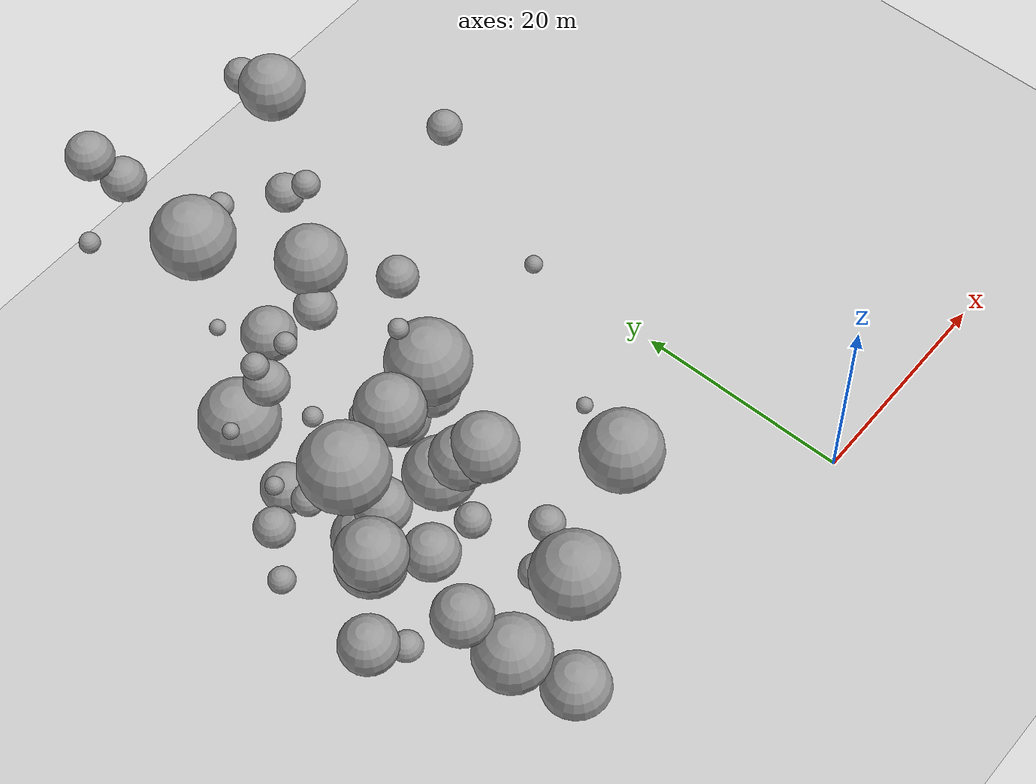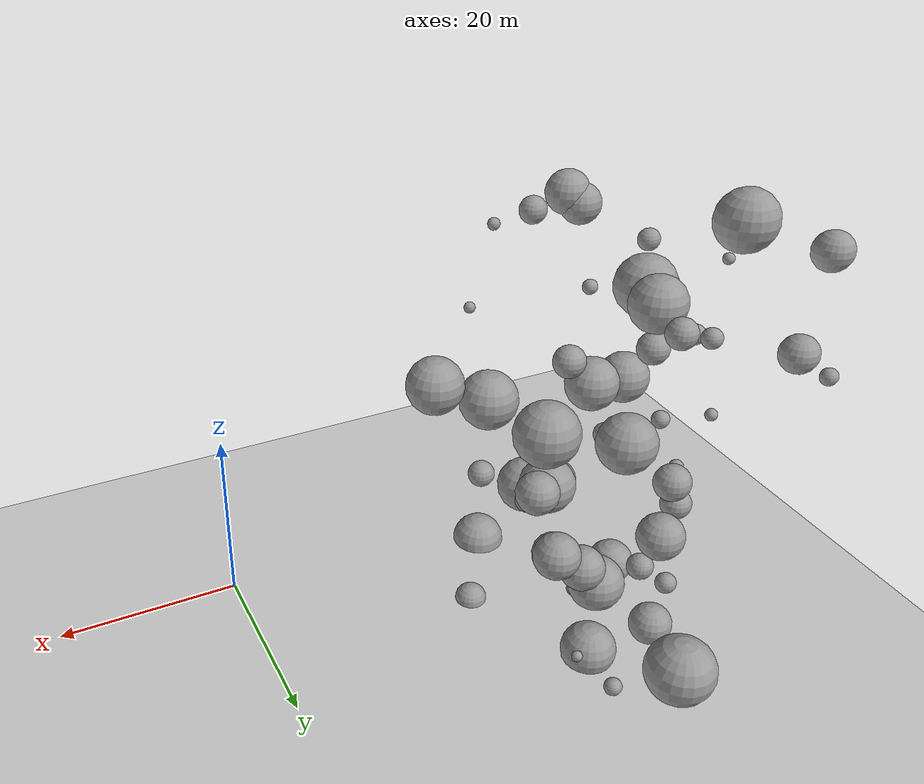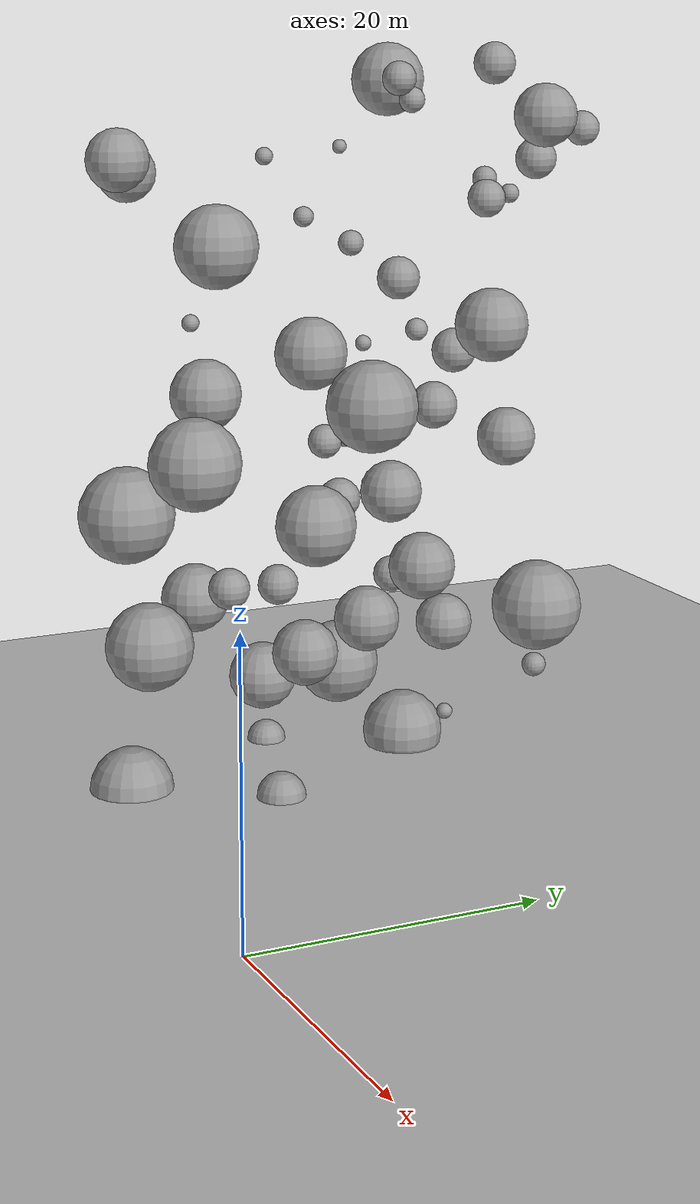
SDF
<sdf version="1.7">
 <world name="default">
  <model name="ground_plane">
   <static>1</static>
   <link name="link">
    <collision name="collision">
     <geometry><plane><normal>0 0 1</normal><size>100 100</size></plane></geometry>
     <surface>
      <contact><collide_bitmask>65535</collide_bitmask></contact>
      <friction><ode><mu>100</mu><mu2>50</mu2></ode></friction>
     </surface>
    </collision>
    <visual name="visual">
     <cast_shadows>0</cast_shadows>
     <geometry><plane><normal>0 0 1</normal><size>100 100</size></plane></geometry>
     <material>
      <script><uri>file://media/materials/scripts/gazebo.material</uri><name>Gazebo/Grey</name></script>
     </material>
    </visual>
   </link>
  </model>
  <model name="sphere_18">
   <static>1</static>
   <pose>-40 14 26 0 0 0</pose>
   <link name="link">
    <inertial>
     <mass>8225.452633346169</mass>
     <inertia>
      <ixx>23947.890376761054</ixx>
      <iyy>23947.890376761054</iyy>
      <izz>23947.890376761054</izz>
      <ixy>0</ixy>
      <ixz>0</ixz>
      <iyz>0</iyz>
     </inertia>
    </inertial>
    <collision name="collision">
     <geometry><sphere><radius>2.6978868553422295</radius></sphere></geometry>
    </collision>
    <visual name="visual">
     <geometry><sphere><radius>2.6978868553422295</radius></sphere></geometry>
     <material>
      <script><uri>file://media/materials/scripts/gazebo.material</uri><name>Gazebo/Grey</name></script>
     </material>
    </visual>
   </link>
  </model>
  <model name="sphere_20">
   <static>1</static>
   <pose>-39 18 4 0 0 0</pose>
   <link name="link">
    <inertial>
     <mass>6884.592858552692</mass>
     <inertia>
      <ixx>17801.831602850525</ixx>
      <iyy>17801.831602850525</iyy>
      <izz>17801.831602850525</izz>
      <ixy>0</ixy>
      <ixz>0</ixz>
      <iyz>0</iyz>
     </inertia>
    </inertial>
    <collision name="collision">
     <geometry><sphere><radius>2.5425132072564818</radius></sphere></geometry>
    </collision>
    <visual name="visual">
     <geometry><sphere><radius>2.5425132072564818</radius></sphere></geometry>
     <material>
      <script><uri>file://media/materials/scripts/gazebo.material</uri><name>Gazebo/Grey</name></script>
     </material>
    </visual>
   </link>
  </model>
  <model name="sphere_35">
   <static>1</static>
   <pose>-39 25 22 0 0 0</pose>
   <link name="link">
    <inertial>
     <mass>152.28715886802905</mass>
     <inertia>
      <ixx>31.029377219115755</ixx>
      <iyy>31.029377219115755</iyy>
      <izz>31.029377219115755</izz>
      <ixy>0</ixy>
      <ixz>0</ixz>
      <iyz>0</iyz>
     </inertia>
    </inertial>
    <collision name="collision">
     <geometry><sphere><radius>0.7137151107000433</radius></sphere></geometry>
    </collision>
    <visual name="visual">
     <geometry><sphere><radius>0.7137151107000433</radius></sphere></geometry>
     <material>
      <script><uri>file://media/materials/scripts/gazebo.material</uri><name>Gazebo/Grey</name></script>
     </material>
    </visual>
   </link>
  </model>
  <model name="sphere_40">
   <static>1</static>
   <pose>-30 34 23 0 0 0</pose>
   <link name="link">
    <inertial>
     <mass>4261.430314649051</mass>
     <inertia>
      <ixx>8003.130589517396</ixx>
      <iyy>8003.130589517396</iyy>
      <izz>8003.130589517396</izz>
      <ixy>0</ixy>
      <ixz>0</ixz>
      <iyz>0</iyz>
     </inertia>
    </inertial>
    <collision name="collision">
     <geometry><sphere><radius>2.1668171313871447</radius></sphere></geometry>
    </collision>
    <visual name="visual">
     <geometry><sphere><radius>2.1668171313871447</radius></sphere></geometry>
     <material>
      <script><uri>file://media/materials/scripts/gazebo.material</uri><name>Gazebo/Grey</name></script>
     </material>
    </visual>
   </link>
  </model>
  <model name="sphere_47">
   <static>1</static>
   <pose>-31 18 40 0 0 0</pose>
   <link name="link">
    <inertial>
     <mass>155.30379787115365</mass>
     <inertia>
      <ixx>32.06055569912542</ixx>
      <iyy>32.06055569912542</iyy>
      <izz>32.06055569912542</izz>
      <ixy>0</ixy>
      <ixz>0</ixz>
      <iyz>0</iyz>
     </inertia>
    </inertial>
    <collision name="collision">
     <geometry><sphere><radius>0.7183969651521795</radius></sphere></geometry>
    </collision>
    <visual name="visual">
     <geometry><sphere><radius>0.7183969651521795</radius></sphere></geometry>
     <material>
      <script><uri>file://media/materials/scripts/gazebo.material</uri><name>Gazebo/Grey</name></script>
     </material>
    </visual>
   </link>
  </model>
  <model name="sphere_70">
   <static>1</static>
   <pose>-32 22 26 0 0 0</pose>
   <link name="link">
    <inertial>
     <mass>585.6069190894783</mass>
     <inertia>
      <ixx>292.87204345417746</ixx>
      <iyy>292.87204345417746</iyy>
      <izz>292.87204345417746</izz>
      <ixy>0</ixy>
      <ixz>0</ixz>
      <iyz>0</iyz>
     </inertia>
    </inertial>
    <collision name="collision">
     <geometry><sphere><radius>1.1181649206936348</radius></sphere></geometry>
    </collision>
    <visual name="visual">
     <geometry><sphere><radius>1.1181649206936348</radius></sphere></geometry>
     <material>
      <script><uri>file://media/materials/scripts/gazebo.material</uri><name>Gazebo/Grey</name></script>
     </material>
    </visual>
   </link>
  </model>
  <model name="sphere_76">
   <static>1</static>
   <pose>-34 21 23 0 0 0</pose>
   <link name="link">
    <inertial>
     <mass>803.7425091275265</mass>
     <inertia>
      <ixx>496.4351023191032</ixx>
      <iyy>496.4351023191032</iyy>
      <izz>496.4351023191032</izz>
      <ixy>0</ixy>
      <ixz>0</ixz>
      <iyz>0</iyz>
     </inertia>
    </inertial>
    <collision name="collision">
     <geometry><sphere><radius>1.242632695461721</radius></sphere></geometry>
    </collision>
    <visual name="visual">
     <geometry><sphere><radius>1.242632695461721</radius></sphere></geometry>
     <material>
      <script><uri>file://media/materials/scripts/gazebo.material</uri><name>Gazebo/Grey</name></script>
     </material>
    </visual>
   </link>
  </model>
  <model name="sphere_82">
   <static>1</static>
   <pose>-26 10 15 0 0 0</pose>
   <link name="link">
    <inertial>
     <mass>1269.9780228273705</mass>
     <inertia>
      <ixx>1064.129772752916</ixx>
      <iyy>1064.129772752916</iyy>
      <izz>1064.129772752916</izz>
      <ixy>0</ixy>
      <ixz>0</ixz>
      <iyz>0</iyz>
     </inertia>
    </inertial>
    <collision name="collision">
     <geometry><sphere><radius>1.4473354473047935</radius></sphere></geometry>
    </collision>
    <visual name="visual">
     <geometry><sphere><radius>1.4473354473047935</radius></sphere></geometry>
     <material>
      <script><uri>file://media/materials/scripts/gazebo.material</uri><name>Gazebo/Grey</name></script>
     </material>
    </visual>
   </link>
  </model>
  <model name="sphere_85">
   <static>1</static>
   <pose>-30 26 48 0 0 0</pose>
   <link name="link">
    <inertial>
     <mass>333.2703430083018</mass>
     <inertia>
      <ixx>114.46218514865483</ixx>
      <iyy>114.46218514865483</iyy>
      <izz>114.46218514865483</izz>
      <ixy>0</ixy>
      <ixz>0</ixz>
      <iyz>0</iyz>
     </inertia>
    </inertial>
    <collision name="collision">
     <geometry><sphere><radius>0.926622169229243</radius></sphere></geometry>
    </collision>
    <visual name="visual">
     <geometry><sphere><radius>0.926622169229243</radius></sphere></geometry>
     <material>
      <script><uri>file://media/materials/scripts/gazebo.material</uri><name>Gazebo/Grey</name></script>
     </material>
    </visual>
   </link>
  </model>
  <model name="sphere_92">
   <static>1</static>
   <pose>-32 33 42 0 0 0</pose>
   <link name="link">
    <inertial>
     <mass>301.44834404158814</mass>
     <inertia>
      <ixx>96.8327849669831</ixx>
      <iyy>96.8327849669831</iyy>
      <izz>96.8327849669831</izz>
      <ixy>0</ixy>
      <ixz>0</ixz>
      <iyz>0</iyz>
     </inertia>
    </inertial>
    <collision name="collision">
     <geometry><sphere><radius>0.8961377333540194</radius></sphere></geometry>
    </collision>
    <visual name="visual">
     <geometry><sphere><radius>0.8961377333540194</radius></sphere></geometry>
     <material>
      <script><uri>file://media/materials/scripts/gazebo.material</uri><name>Gazebo/Grey</name></script>
     </material>
    </visual>
   </link>
  </model>
  <model name="sphere_117">
   <static>1</static>
   <pose>-31 23 10 0 0 0</pose>
   <link name="link">
    <inertial>
     <mass>5925.432330833343</mass>
     <inertia>
      <ixx>13863.333039640904</ixx>
      <iyy>13863.333039640904</iyy>
      <izz>13863.333039640904</izz>
      <ixy>0</ixy>
      <ixz>0</ixz>
      <iyz>0</iyz>
     </inertia>
    </inertial>
    <collision name="collision">
     <geometry><sphere><radius>2.418487300037291</radius></sphere></geometry>
    </collision>
    <visual name="visual">
     <geometry><sphere><radius>2.418487300037291</radius></sphere></geometry>
     <material>
      <script><uri>file://media/materials/scripts/gazebo.material</uri><name>Gazebo/Grey</name></script>
     </material>
    </visual>
   </link>
  </model>
  <model name="sphere_118">
   <static>1</static>
   <pose>-25 22 21 0 0 0</pose>
   <link name="link">
    <inertial>
     <mass>4375.741081865691</mass>
     <inertia>
      <ixx>8364.120462237703</ixx>
      <iyy>8364.120462237703</iyy>
      <izz>8364.120462237703</izz>
      <ixy>0</ixy>
      <ixz>0</ixz>
      <iyz>0</iyz>
     </inertia>
    </inertial>
    <collision name="collision">
     <geometry><sphere><radius>2.1860210301755045</radius></sphere></geometry>
    </collision>
    <visual name="visual">
     <geometry><sphere><radius>2.1860210301755045</radius></sphere></geometry>
     <material>
      <script><uri>file://media/materials/scripts/gazebo.material</uri><name>Gazebo/Grey</name></script>
     </material>
    </visual>
   </link>
  </model>
  <model name="sphere_122">
   <static>1</static>
   <pose>-30 4 20 0 0 0</pose>
   <link name="link">
    <inertial>
     <mass>16475.69941824915</mass>
     <inertia>
      <ixx>76220.89054452357</ixx>
      <iyy>76220.89054452357</iyy>
      <izz>76220.89054452357</izz>
      <ixy>0</ixy>
      <ixz>0</ixz>
      <iyz>0</iyz>
     </inertia>
    </inertial>
    <collision name="collision">
     <geometry><sphere><radius>3.4008312572376354</radius></sphere></geometry>
    </collision>
    <visual name="visual">
     <geometry><sphere><radius>3.4008312572376354</radius></sphere></geometry>
     <material>
      <script><uri>file://media/materials/scripts/gazebo.material</uri><name>Gazebo/Grey</name></script>
     </material>
    </visual>
   </link>
  </model>
  <model name="sphere_145">
   <static>1</static>
   <pose>-36 6 44 0 0 0</pose>
   <link name="link">
    <inertial>
     <mass>4893.143862018364</mass>
     <inertia>
      <ixx>10076.604798664828</ixx>
      <iyy>10076.604798664828</iyy>
      <izz>10076.604798664828</izz>
      <ixy>0</ixy>
      <ixz>0</ixz>
      <iyz>0</iyz>
     </inertia>
    </inertial>
    <collision name="collision">
     <geometry><sphere><radius>2.2689928381188174</radius></sphere></geometry>
    </collision>
    <visual name="visual">
     <geometry><sphere><radius>2.2689928381188174</radius></sphere></geometry>
     <material>
      <script><uri>file://media/materials/scripts/gazebo.material</uri><name>Gazebo/Grey</name></script>
     </material>
    </visual>
   </link>
  </model>
  <model name="sphere_147">
   <static>1</static>
   <pose>-26 21 27 0 0 0</pose>
   <link name="link">
    <inertial>
     <mass>15024.055192962845</mass>
     <inertia>
      <ixx>65360.12424226399</ixx>
      <iyy>65360.12424226399</iyy>
      <izz>65360.12424226399</izz>
      <ixy>0</ixy>
      <ixz>0</ixz>
      <iyz>0</iyz>
     </inertia>
    </inertial>
    <collision name="collision">
     <geometry><sphere><radius>3.2978648489624667</radius></sphere></geometry>
    </collision>
    <visual name="visual">
     <geometry><sphere><radius>3.2978648489624667</radius></sphere></geometry>
     <material>
      <script><uri>file://media/materials/scripts/gazebo.material</uri><name>Gazebo/Grey</name></script>
     </material>
    </visual>
   </link>
  </model>
  <model name="sphere_168">
   <static>1</static>
   <pose>-29 15 14 0 0 0</pose>
   <link name="link">
    <inertial>
     <mass>1268.7417553796713</mass>
     <inertia>
      <ixx>1062.4038608970968</ixx>
      <iyy>1062.4038608970968</iyy>
      <izz>1062.4038608970968</izz>
      <ixy>0</ixy>
      <ixz>0</ixz>
      <iyz>0</iyz>
     </inertia>
    </inertial>
    <collision name="collision">
     <geometry><sphere><radius>1.4468656558121165</radius></sphere></geometry>
    </collision>
    <visual name="visual">
     <geometry><sphere><radius>1.4468656558121165</radius></sphere></geometry>
     <material>
      <script><uri>file://media/materials/scripts/gazebo.material</uri><name>Gazebo/Grey</name></script>
     </material>
    </visual>
   </link>
  </model>
  <model name="sphere_171">
   <static>1</static>
   <pose>-34 31 8 0 0 0</pose>
   <link name="link">
    <inertial>
     <mass>4141.89619348023</mass>
     <inertia>
      <ixx>7632.490435268319</ixx>
      <iyy>7632.490435268319</iyy>
      <izz>7632.490435268319</izz>
      <ixy>0</ixy>
      <ixz>0</ixz>
      <iyz>0</iyz>
     </inertia>
    </inertial>
    <collision name="collision">
     <geometry><sphere><radius>2.1463647814658766</radius></sphere></geometry>
    </collision>
    <visual name="visual">
     <geometry><sphere><radius>2.1463647814658766</radius></sphere></geometry>
     <material>
      <script><uri>file://media/materials/scripts/gazebo.material</uri><name>Gazebo/Grey</name></script>
     </material>
    </visual>
   </link>
  </model>
  <model name="sphere_172">
   <static>1</static>
   <pose>-35 11 12 0 0 0</pose>
   <link name="link">
    <inertial>
     <mass>6558.706225554831</mass>
     <inertia>
      <ixx>16419.67472655536</ixx>
      <iyy>16419.67472655536</iyy>
      <izz>16419.67472655536</izz>
      <ixy>0</ixy>
      <ixz>0</ixz>
      <iyz>0</iyz>
     </inertia>
    </inertial>
    <collision name="collision">
     <geometry><sphere><radius>2.501745860039657</radius></sphere></geometry>
    </collision>
    <visual name="visual">
     <geometry><sphere><radius>2.501745860039657</radius></sphere></geometry>
     <material>
      <script><uri>file://media/materials/scripts/gazebo.material</uri><name>Gazebo/Grey</name></script>
     </material>
    </visual>
   </link>
  </model>
  <model name="sphere_187">
   <static>1</static>
   <pose>-30 4 0 0 0 0</pose>
   <link name="link">
    <inertial>
     <mass>11270.670871629663</mass>
     <inertia>
      <ixx>40480.934643574605</ixx>
      <iyy>40480.934643574605</iyy>
      <izz>40480.934643574605</izz>
      <ixy>0</ixy>
      <ixz>0</ixz>
      <iyz>0</iyz>
     </inertia>
    </inertial>
    <collision name="collision">
     <geometry><sphere><radius>2.99654211653514</radius></sphere></geometry>
    </collision>
    <visual name="visual">
     <geometry><sphere><radius>2.99654211653514</radius></sphere></geometry>
     <material>
      <script><uri>file://media/materials/scripts/gazebo.material</uri><name>Gazebo/Grey</name></script>
     </material>
    </visual>
   </link>
  </model>
  <model name="sphere_188">
   <static>1</static>
   <pose>-36 17 0 0 0 0</pose>
   <link name="link">
    <inertial>
     <mass>1210.3469071014342</mass>
     <inertia>
      <ixx>982.1640334451611</ixx>
      <iyy>982.1640334451611</iyy>
      <izz>982.1640334451611</izz>
      <ixy>0</ixy>
      <ixz>0</ixz>
      <iyz>0</iyz>
     </inertia>
    </inertial>
    <collision name="collision">
     <geometry><sphere><radius>1.4243184013245076</radius></sphere></geometry>
    </collision>
    <visual name="visual">
     <geometry><sphere><radius>1.4243184013245076</radius></sphere></geometry>
     <material>
      <script><uri>file://media/materials/scripts/gazebo.material</uri><name>Gazebo/Grey</name></script>
     </material>
    </visual>
   </link>
  </model>
  <model name="sphere_189">
   <static>1</static>
   <pose>-35 39 43 0 0 0</pose>
   <link name="link">
    <inertial>
     <mass>1566.4705016477649</mass>
     <inertia>
      <ixx>1509.6326736413425</ixx>
      <iyy>1509.6326736413425</iyy>
      <izz>1509.6326736413425</izz>
      <ixy>0</ixy>
      <ixz>0</ixz>
      <iyz>0</iyz>
     </inertia>
    </inertial>
    <collision name="collision">
     <geometry><sphere><radius>1.5521887708428272</radius></sphere></geometry>
    </collision>
    <visual name="visual">
     <geometry><sphere><radius>1.5521887708428272</radius></sphere></geometry>
     <material>
      <script><uri>file://media/materials/scripts/gazebo.material</uri><name>Gazebo/Grey</name></script>
     </material>
    </visual>
   </link>
  </model>
  <model name="sphere_198">
   <static>1</static>
   <pose>-40 26 7 0 0 0</pose>
   <link name="link">
    <inertial>
     <mass>617.8506450032503</mass>
     <inertia>
      <ixx>320.23841366670877</ixx>
      <iyy>320.23841366670877</iyy>
      <izz>320.23841366670877</izz>
      <ixy>0</ixy>
      <ixz>0</ixz>
      <iyz>0</iyz>
     </inertia>
    </inertial>
    <collision name="collision">
     <geometry><sphere><radius>1.138321569153365</radius></sphere></geometry>
    </collision>
    <visual name="visual">
     <geometry><sphere><radius>1.138321569153365</radius></sphere></geometry>
     <material>
      <script><uri>file://media/materials/scripts/gazebo.material</uri><name>Gazebo/Grey</name></script>
     </material>
    </visual>
   </link>
  </model>
  <model name="sphere_205">
   <static>1</static>
   <pose>-28 31 41 0 0 0</pose>
   <link name="link">
    <inertial>
     <mass>1055.2073721679562</mass>
     <inertia>
      <ixx>781.4429540592438</ixx>
      <iyy>781.4429540592438</iyy>
      <izz>781.4429540592438</izz>
      <ixy>0</ixy>
      <ixz>0</ixz>
      <iyz>0</iyz>
     </inertia>
    </inertial>
    <collision name="collision">
     <geometry><sphere><radius>1.3606603697169493</radius></sphere></geometry>
    </collision>
    <visual name="visual">
     <geometry><sphere><radius>1.3606603697169493</radius></sphere></geometry>
     <material>
      <script><uri>file://media/materials/scripts/gazebo.material</uri><name>Gazebo/Grey</name></script>
     </material>
    </visual>
   </link>
  </model>
  <model name="sphere_218">
   <static>1</static>
   <pose>-24 12 45 0 0 0</pose>
   <link name="link">
    <inertial>
     <mass>86.91421882349934</mass>
     <inertia>
      <ixx>12.184815858120837</ixx>
      <iyy>12.184815858120837</iyy>
      <izz>12.184815858120837</izz>
      <ixy>0</ixy>
      <ixz>0</ixz>
      <iyz>0</iyz>
     </inertia>
    </inertial>
    <collision name="collision">
     <geometry><sphere><radius>0.5920168583708135</radius></sphere></geometry>
    </collision>
    <visual name="visual">
     <geometry><sphere><radius>0.5920168583708135</radius></sphere></geometry>
     <material>
      <script><uri>file://media/materials/scripts/gazebo.material</uri><name>Gazebo/Grey</name></script>
     </material>
    </visual>
   </link>
  </model>
  <model name="sphere_227">
   <static>1</static>
   <pose>-34 7 9 0 0 0</pose>
   <link name="link">
    <inertial>
     <mass>14205.140694231628</mass>
     <inertia>
      <ixx>59531.04200909687</ixx>
      <iyy>59531.04200909687</iyy>
      <izz>59531.04200909687</izz>
      <ixy>0</ixy>
      <ixz>0</ixz>
      <iyz>0</iyz>
     </inertia>
    </inertial>
    <collision name="collision">
     <geometry><sphere><radius>3.2368231887479624</radius></sphere></geometry>
    </collision>
    <visual name="visual">
     <geometry><sphere><radius>3.2368231887479624</radius></sphere></geometry>
     <material>
      <script><uri>file://media/materials/scripts/gazebo.material</uri><name>Gazebo/Grey</name></script>
     </material>
    </visual>
   </link>
  </model>
  <model name="sphere_241">
   <static>1</static>
   <pose>-31 18 8 0 0 0</pose>
   <link name="link">
    <inertial>
     <mass>5926.34005336005</mass>
     <inertia>
      <ixx>13866.872781994907</ixx>
      <iyy>13866.872781994907</iyy>
      <izz>13866.872781994907</izz>
      <ixy>0</ixy>
      <ixz>0</ixz>
      <iyz>0</iyz>
     </inertia>
    </inertial>
    <collision name="collision">
     <geometry><sphere><radius>2.418610790509601</radius></sphere></geometry>
    </collision>
    <visual name="visual">
     <geometry><sphere><radius>2.418610790509601</radius></sphere></geometry>
     <material>
      <script><uri>file://media/materials/scripts/gazebo.material</uri><name>Gazebo/Grey</name></script>
     </material>
    </visual>
   </link>
  </model>
  <model name="sphere_258">
   <static>1</static>
   <pose>-29 18 18 0 0 0</pose>
   <link name="link">
    <inertial>
     <mass>10596.093286969723</mass>
     <inertia>
      <ixx>36523.90521127547</ixx>
      <iyy>36523.90521127547</iyy>
      <izz>36523.90521127547</izz>
      <ixy>0</ixy>
      <ixz>0</ixz>
      <iyz>0</iyz>
     </inertia>
    </inertial>
    <collision name="collision">
     <geometry><sphere><radius>2.935524580490048</radius></sphere></geometry>
    </collision>
    <visual name="visual">
     <geometry><sphere><radius>2.935524580490048</radius></sphere></geometry>
     <material>
      <script><uri>file://media/materials/scripts/gazebo.material</uri><name>Gazebo/Grey</name></script>
     </material>
    </visual>
   </link>
  </model>
  <model name="sphere_264">
   <static>1</static>
   <pose>-34 30 25 0 0 0</pose>
   <link name="link">
    <inertial>
     <mass>2305.6268028142517</mass>
     <inertia>
      <ixx>2875.0756206414685</ixx>
      <iyy>2875.0756206414685</iyy>
      <izz>2875.0756206414685</izz>
      <ixy>0</ixy>
      <ixz>0</ixz>
      <iyz>0</iyz>
     </inertia>
    </inertial>
    <collision name="collision">
     <geometry><sphere><radius>1.7656317681970184</radius></sphere></geometry>
    </collision>
    <visual name="visual">
     <geometry><sphere><radius>1.7656317681970184</radius></sphere></geometry>
     <material>
      <script><uri>file://media/materials/scripts/gazebo.material</uri><name>Gazebo/Grey</name></script>
     </material>
    </visual>
   </link>
  </model>
  <model name="sphere_273">
   <static>1</static>
   <pose>-27 31 32 0 0 0</pose>
   <link name="link">
    <inertial>
     <mass>7955.48913921917</mass>
     <inertia>
      <ixx>22652.3048215234</ixx>
      <iyy>22652.3048215234</iyy>
      <izz>22652.3048215234</izz>
      <ixy>0</ixy>
      <ixz>0</ixz>
      <iyz>0</iyz>
     </inertia>
    </inertial>
    <collision name="collision">
     <geometry><sphere><radius>2.6680425982560187</radius></sphere></geometry>
    </collision>
    <visual name="visual">
     <geometry><sphere><radius>2.6680425982560187</radius></sphere></geometry>
     <material>
      <script><uri>file://media/materials/scripts/gazebo.material</uri><name>Gazebo/Grey</name></script>
     </material>
    </visual>
   </link>
  </model>
  <model name="sphere_281">
   <static>1</static>
   <pose>-38 28 49 0 0 0</pose>
   <link name="link">
    <inertial>
     <mass>8335.643635910068</mass>
     <inertia>
      <ixx>24484.96481289702</ixx>
      <iyy>24484.96481289702</iyy>
      <izz>24484.96481289702</izz>
      <ixy>0</ixy>
      <ixz>0</ixz>
      <iyz>0</iyz>
     </inertia>
    </inertial>
    <collision name="collision">
     <geometry><sphere><radius>2.7098807301990226</radius></sphere></geometry>
    </collision>
    <visual name="visual">
     <geometry><sphere><radius>2.7098807301990226</radius></sphere></geometry>
     <material>
      <script><uri>file://media/materials/scripts/gazebo.material</uri><name>Gazebo/Grey</name></script>
     </material>
    </visual>
   </link>
  </model>
  <model name="sphere_296">
   <static>1</static>
   <pose>-28 28 3 0 0 0</pose>
   <link name="link">
    <inertial>
     <mass>84.50873429161608</mass>
     <inertia>
      <ixx>11.62796137496912</ixx>
      <iyy>11.62796137496912</iyy>
      <izz>11.62796137496912</izz>
      <ixy>0</ixy>
      <ixz>0</ixz>
      <iyz>0</iyz>
     </inertia>
    </inertial>
    <collision name="collision">
     <geometry><sphere><radius>0.5865040237548754</radius></sphere></geometry>
    </collision>
    <visual name="visual">
     <geometry><sphere><radius>0.5865040237548754</radius></sphere></geometry>
     <material>
      <script><uri>file://media/materials/scripts/gazebo.material</uri><name>Gazebo/Grey</name></script>
     </material>
    </visual>
   </link>
  </model>
  <model name="sphere_318">
   <static>1</static>
   <pose>-40 25 17 0 0 0</pose>
   <link name="link">
    <inertial>
     <mass>1722.1460705050565</mass>
     <inertia>
      <ixx>1767.8723099528152</ixx>
      <iyy>1767.8723099528152</iyy>
      <izz>1767.8723099528152</izz>
      <ixy>0</ixy>
      <ixz>0</ixz>
      <iyz>0</iyz>
     </inertia>
    </inertial>
    <collision name="collision">
     <geometry><sphere><radius>1.601992426423871</radius></sphere></geometry>
    </collision>
    <visual name="visual">
     <geometry><sphere><radius>1.601992426423871</radius></sphere></geometry>
     <material>
      <script><uri>file://media/materials/scripts/gazebo.material</uri><name>Gazebo/Grey</name></script>
     </material>
    </visual>
   </link>
  </model>
  <model name="sphere_319">
   <static>1</static>
   <pose>-26 23 36 0 0 0</pose>
   <link name="link">
    <inertial>
     <mass>1426.1617273699032</mass>
     <inertia>
      <ixx>1291.067298352506</ixx>
      <iyy>1291.067298352506</iyy>
      <izz>1291.067298352506</izz>
      <ixy>0</ixy>
      <ixz>0</ixz>
      <iyz>0</iyz>
     </inertia>
    </inertial>
    <collision name="collision">
     <geometry><sphere><radius>1.5043886772837807</radius></sphere></geometry>
    </collision>
    <visual name="visual">
     <geometry><sphere><radius>1.5043886772837807</radius></sphere></geometry>
     <material>
      <script><uri>file://media/materials/scripts/gazebo.material</uri><name>Gazebo/Grey</name></script>
     </material>
    </visual>
   </link>
  </model>
  <model name="sphere_320">
   <static>1</static>
   <pose>-38 37 50 0 0 0</pose>
   <link name="link">
    <inertial>
     <mass>1699.1437369428543</mass>
     <inertia>
      <ixx>1728.692642104113</ixx>
      <iyy>1728.692642104113</iyy>
      <izz>1728.692642104113</izz>
      <ixy>0</ixy>
      <ixz>0</ixz>
      <iyz>0</iyz>
     </inertia>
    </inertial>
    <collision name="collision"><geometry><sphere><radius>1.5948279438717</radius></sphere></geometry></collision>
    <visual name="visual">
     <geometry><sphere><radius>1.5948279438717</radius></sphere></geometry>
     <material>
      <script><uri>file://media/materials/scripts/gazebo.material</uri><name>Gazebo/Grey</name></script>
     </material>
    </visual>
   </link>
  </model>
  <model name="sphere_361">
   <static>1</static>
   <pose>-25 7 34 0 0 0</pose>
   <link name="link">
    <inertial>
     <mass>85.9804967767925</mass>
     <inertia>
      <ixx>11.967428328024663</ixx>
      <iyy>11.967428328024663</iyy>
      <izz>11.967428328024663</izz>
      <ixy>0</ixy>
      <ixz>0</ixz>
      <iyz>0</iyz>
     </inertia>
    </inertial>
    <collision name="collision">
     <geometry><sphere><radius>0.5898892026674357</radius></sphere></geometry>
    </collision>
    <visual name="visual">
     <geometry><sphere><radius>0.5898892026674357</radius></sphere></geometry>
     <material>
      <script><uri>file://media/materials/scripts/gazebo.material</uri><name>Gazebo/Grey</name></script>
     </material>
    </visual>
   </link>
  </model>
  <model name="sphere_366">
   <static>1</static>
   <pose>-31 26 1 0 0 0</pose>
   <link name="link">
    <inertial>
     <mass>10882.070209788753</mass>
     <inertia>
      <ixx>38181.54146822102</ixx>
      <iyy>38181.54146822102</iyy>
      <izz>38181.54146822102</izz>
      <ixy>0</ixy>
      <ixz>0</ixz>
      <iyz>0</iyz>
     </inertia>
    </inertial>
    <collision name="collision">
     <geometry><sphere><radius>2.961699359540105</radius></sphere></geometry>
    </collision>
    <visual name="visual">
     <geometry><sphere><radius>2.961699359540105</radius></sphere></geometry>
     <material>
      <script><uri>file://media/materials/scripts/gazebo.material</uri><name>Gazebo/Grey</name></script>
     </material>
    </visual>
   </link>
  </model>
  <model name="sphere_376">
   <static>1</static>
   <pose>-38 25 37 0 0 0</pose>
   <link name="link">
    <inertial>
     <mass>363.56216340572047</mass>
     <inertia>
      <ixx>132.32199810063034</ixx>
      <iyy>132.32199810063034</iyy>
      <izz>132.32199810063034</izz>
      <ixy>0</ixy>
      <ixz>0</ixz>
      <iyz>0</iyz>
     </inertia>
    </inertial>
    <collision name="collision">
     <geometry><sphere><radius>0.9538864725385473</radius></sphere></geometry>
    </collision>
    <visual name="visual">
     <geometry><sphere><radius>0.9538864725385473</radius></sphere></geometry>
     <material>
      <script><uri>file://media/materials/scripts/gazebo.material</uri><name>Gazebo/Grey</name></script>
     </material>
    </visual>
   </link>
  </model>
  <model name="sphere_379">
   <static>1</static>
   <pose>-29 29 30 0 0 0</pose>
   <link name="link">
    <inertial>
     <mass>1749.8671939991575</mass>
     <inertia>
      <ixx>1815.5549606816971</ixx>
      <iyy>1815.5549606816971</iyy>
      <izz>1815.5549606816971</izz>
      <ixy>0</ixy>
      <ixz>0</ixz>
      <iyz>0</iyz>
     </inertia>
    </inertial>
    <collision name="collision">
     <geometry><sphere><radius>1.6105423895823845</radius></sphere></geometry>
    </collision>
    <visual name="visual">
     <geometry><sphere><radius>1.6105423895823845</radius></sphere></geometry>
     <material>
      <script><uri>file://media/materials/scripts/gazebo.material</uri><name>Gazebo/Grey</name></script>
     </material>
    </visual>
   </link>
  </model>
  <model name="sphere_382">
   <static>1</static>
   <pose>-27 35 6 0 0 0</pose>
   <link name="link">
    <inertial>
     <mass>295.59764747937226</mass>
     <inertia>
      <ixx>93.7207756235129</ixx>
      <iyy>93.7207756235129</iyy>
      <izz>93.7207756235129</izz>
      <ixy>0</ixy>
      <ixz>0</ixz>
      <iyz>0</iyz>
     </inertia>
    </inertial>
    <collision name="collision">
     <geometry><sphere><radius>0.8903022167017152</radius></sphere></geometry>
    </collision>
    <visual name="visual">
     <geometry><sphere><radius>0.8903022167017152</radius></sphere></geometry>
     <material>
      <script><uri>file://media/materials/scripts/gazebo.material</uri><name>Gazebo/Grey</name></script>
     </material>
    </visual>
   </link>
  </model>
  <model name="sphere_383">
   <static>1</static>
   <pose>-35 27 12 0 0 0</pose>
   <link name="link">
    <inertial>
     <mass>1064.988056134925</mass>
     <inertia>
      <ixx>793.5521642406396</ixx>
      <iyy>793.5521642406396</iyy>
      <izz>793.5521642406396</izz>
      <ixy>0</ixy>
      <ixz>0</ixz>
      <iyz>0</iyz>
     </inertia>
    </inertial>
    <collision name="collision">
     <geometry><sphere><radius>1.3648514200946642</radius></sphere></geometry>
    </collision>
    <visual name="visual">
     <geometry><sphere><radius>1.3648514200946642</radius></sphere></geometry>
     <material>
      <script><uri>file://media/materials/scripts/gazebo.material</uri><name>Gazebo/Grey</name></script>
     </material>
    </visual>
   </link>
  </model>
  <model name="sphere_389">
   <static>1</static>
   <pose>-40 27 29 0 0 0</pose>
   <link name="link">
    <inertial>
     <mass>95.5842067942553</mass>
     <inertia>
      <ixx>14.277247427046992</ixx>
      <iyy>14.277247427046992</iyy>
      <izz>14.277247427046992</izz>
      <ixy>0</ixy>
      <ixz>0</ixz>
      <iyz>0</iyz>
     </inertia>
    </inertial>
    <collision name="collision">
     <geometry><sphere><radius>0.6110815577829782</radius></sphere></geometry>
    </collision>
    <visual name="visual">
     <geometry><sphere><radius>0.6110815577829782</radius></sphere></geometry>
     <material>
      <script><uri>file://media/materials/scripts/gazebo.material</uri><name>Gazebo/Grey</name></script>
     </material>
    </visual>
   </link>
  </model>
  <model name="sphere_393">
   <static>1</static>
   <pose>-32 38 9 0 0 0</pose>
   <link name="link">
    <inertial>
     <mass>17315.084018362144</mass>
     <inertia>
      <ixx>82802.20914810173</ixx>
      <iyy>82802.20914810173</iyy>
      <izz>82802.20914810173</izz>
      <ixy>0</ixy>
      <ixz>0</ixz>
      <iyz>0</iyz>
     </inertia>
    </inertial>
    <collision name="collision">
     <geometry><sphere><radius>3.4576311699083453</radius></sphere></geometry>
    </collision>
    <visual name="visual">
     <geometry><sphere><radius>3.4576311699083453</radius></sphere></geometry>
     <material>
      <script><uri>file://media/materials/scripts/gazebo.material</uri><name>Gazebo/Grey</name></script>
     </material>
    </visual>
   </link>
  </model>
  <model name="sphere_405">
   <static>1</static>
   <pose>-32 19 30 0 0 0</pose>
   <link name="link">
    <inertial>
     <mass>7772.292346706746</mass>
     <inertia>
      <ixx>21789.610382415292</ixx>
      <iyy>21789.610382415292</iyy>
      <izz>21789.610382415292</izz>
      <ixy>0</ixy>
      <ixz>0</ixz>
      <iyz>0</iyz>
     </inertia>
    </inertial>
    <collision name="collision">
     <geometry><sphere><radius>2.6474037081139343</radius></sphere></geometry>
    </collision>
    <visual name="visual">
     <geometry><sphere><radius>2.6474037081139343</radius></sphere></geometry>
     <material>
      <script><uri>file://media/materials/scripts/gazebo.material</uri><name>Gazebo/Grey</name></script>
     </material>
    </visual>
   </link>
  </model>
  <model name="sphere_406">
   <static>1</static>
   <pose>-39 39 40 0 0 0</pose>
   <link name="link">
    <inertial>
     <mass>167.02870664395516</mass>
     <inertia>
      <ixx>36.19535014178636</ixx>
      <iyy>36.19535014178636</iyy>
      <izz>36.19535014178636</izz>
      <ixy>0</ixy>
      <ixz>0</ixz>
      <iyz>0</iyz>
     </inertia>
    </inertial>
    <collision name="collision">
     <geometry><sphere><radius>0.7360390164398569</radius></sphere></geometry>
    </collision>
    <visual name="visual">
     <geometry><sphere><radius>0.7360390164398569</radius></sphere></geometry>
     <material>
      <script><uri>file://media/materials/scripts/gazebo.material</uri><name>Gazebo/Grey</name></script>
     </material>
    </visual>
   </link>
  </model>
  <model name="sphere_409">
   <static>1</static>
   <pose>-22 6 25 0 0 0</pose>
   <link name="link">
    <inertial>
     <mass>13240.0190410423</mass>
     <inertia>
      <ixx>52943.81934638996</ixx>
      <iyy>52943.81934638996</iyy>
      <izz>52943.81934638996</izz>
      <ixy>0</ixy>
      <ixz>0</ixz>
      <iyz>0</iyz>
     </inertia>
    </inertial>
    <collision name="collision">
     <geometry><sphere><radius>3.1617922707849164</radius></sphere></geometry>
    </collision>
    <visual name="visual">
     <geometry><sphere><radius>3.1617922707849164</radius></sphere></geometry>
     <material>
      <script><uri>file://media/materials/scripts/gazebo.material</uri><name>Gazebo/Grey</name></script>
     </material>
    </visual>
   </link>
  </model>
  <model name="sphere_411">
   <static>1</static>
   <pose>-26 25 15 0 0 0</pose>
   <link name="link">
    <inertial>
     <mass>5839.37217054605</mass>
     <inertia>
      <ixx>13529.378433914399</ixx>
      <iyy>13529.378433914399</iyy>
      <izz>13529.378433914399</izz>
      <ixy>0</ixy>
      <ixz>0</ixz>
      <iyz>0</iyz>
     </inertia>
    </inertial>
    <collision name="collision">
     <geometry><sphere><radius>2.406721561755395</radius></sphere></geometry>
    </collision>
    <visual name="visual">
     <geometry><sphere><radius>2.406721561755395</radius></sphere></geometry>
     <material>
      <script><uri>file://media/materials/scripts/gazebo.material</uri><name>Gazebo/Grey</name></script>
     </material>
    </visual>
   </link>
  </model>
  <model name="sphere_415">
   <static>1</static>
   <pose>-37 7 43 0 0 0</pose>
   <link name="link">
    <inertial>
     <mass>3932.2357226825543</mass>
     <inertia>
      <ixx>6999.496900371802</ixx>
      <iyy>6999.496900371802</iyy>
      <izz>6999.496900371802</izz>
      <ixy>0</ixy>
      <ixz>0</ixz>
      <iyz>0</iyz>
     </inertia>
    </inertial>
    <collision name="collision">
     <geometry><sphere><radius>2.1095199891904803</radius></sphere></geometry>
    </collision>
    <visual name="visual">
     <geometry><sphere><radius>2.1095199891904803</radius></sphere></geometry>
     <material>
      <script><uri>file://media/materials/scripts/gazebo.material</uri><name>Gazebo/Grey</name></script>
     </material>
    </visual>
   </link>
  </model>
  <model name="sphere_429">
   <static>1</static>
   <pose>-40 15 37 0 0 0</pose>
   <link name="link">
    <inertial>
     <mass>13346.563747266267</mass>
     <inertia>
      <ixx>53655.80236560486</ixx>
      <iyy>53655.80236560486</iyy>
      <izz>53655.80236560486</izz>
      <ixy>0</ixy>
      <ixz>0</ixz>
      <iyz>0</iyz>
     </inertia>
    </inertial>
    <collision name="collision">
     <geometry><sphere><radius>3.1702507838968677</radius></sphere></geometry>
    </collision>
    <visual name="visual">
     <geometry><sphere><radius>3.1702507838968677</radius></sphere></geometry>
     <material>
      <script><uri>file://media/materials/scripts/gazebo.material</uri><name>Gazebo/Grey</name></script>
     </material>
    </visual>
   </link>
  </model>
  <model name="sphere_438">
   <static>1</static>
   <pose>-22 21 50 0 0 0</pose>
   <link name="link">
    <inertial>
     <mass>646.6021516224866</mass>
     <inertia>
      <ixx>345.4587210408335</ixx>
      <iyy>345.4587210408335</iyy>
      <izz>345.4587210408335</izz>
      <ixy>0</ixy>
      <ixz>0</ixz>
      <iyz>0</iyz>
     </inertia>
    </inertial>
    <collision name="collision">
     <geometry><sphere><radius>1.1557117056025827</radius></sphere></geometry>
    </collision>
    <visual name="visual">
     <geometry><sphere><radius>1.1557117056025827</radius></sphere></geometry>
     <material>
      <script><uri>file://media/materials/scripts/gazebo.material</uri><name>Gazebo/Grey</name></script>
     </material>
    </visual>
   </link>
  </model>
  <model name="sphere_449">
   <static>1</static>
   <pose>-34 22 6 0 0 0</pose>
   <link name="link">
    <inertial>
     <mass>11995.103512440148</mass>
     <inertia>
      <ixx>44909.779071759986</ixx>
      <iyy>44909.779071759986</iyy>
      <izz>44909.779071759986</izz>
      <ixy>0</ixy>
      <ixz>0</ixz>
      <iyz>0</iyz>
     </inertia>
    </inertial>
    <collision name="collision">
     <geometry><sphere><radius>3.0594155067699007</radius></sphere></geometry>
    </collision>
    <visual name="visual">
     <geometry><sphere><radius>3.0594155067699007</radius></sphere></geometry>
     <material>
      <script><uri>file://media/materials/scripts/gazebo.material</uri><name>Gazebo/Grey</name></script>
     </material>
    </visual>
   </link>
  </model>
  <model name="sphere_452">
   <static>1</static>
   <pose>-40 25 44 0 0 0</pose>
   <link name="link">
    <inertial>
     <mass>64.48423189373604</mass>
     <inertia>
      <ixx>7.408952383129409</ixx>
      <iyy>7.408952383129409</iyy>
      <izz>7.408952383129409</izz>
      <ixy>0</ixy>
      <ixz>0</ixz>
      <iyz>0</iyz>
     </inertia>
    </inertial>
    <collision name="collision">
     <geometry><sphere><radius>0.535946748650541</radius></sphere></geometry>
    </collision>
    <visual name="visual">
     <geometry><sphere><radius>0.535946748650541</radius></sphere></geometry>
     <material>
      <script><uri>file://media/materials/scripts/gazebo.material</uri><name>Gazebo/Grey</name></script>
     </material>
    </visual>
   </link>
  </model>
  <model name="sphere_457">
   <static>1</static>
   <pose>-33 28 31 0 0 0</pose>
   <link name="link">
    <inertial>
     <mass>239.1758172037167</mass>
     <inertia>
      <ixx>65.84604522979383</ixx>
      <iyy>65.84604522979383</iyy>
      <izz>65.84604522979383</izz>
      <ixy>0</ixy>
      <ixz>0</ixz>
      <iyz>0</iyz>
     </inertia>
    </inertial>
    <collision name="collision">
     <geometry><sphere><radius>0.8296142803678925</radius></sphere></geometry>
    </collision>
    <visual name="visual">
     <geometry><sphere><radius>0.8296142803678925</radius></sphere></geometry>
     <material>
      <script><uri>file://media/materials/scripts/gazebo.material</uri><name>Gazebo/Grey</name></script>
     </material>
    </visual>
   </link>
  </model>
  <model name="sphere_476">
   <static>1</static>
   <pose>-25 34 47 0 0 0</pose>
   <link name="link">
    <inertial>
     <mass>4760.7172854255305</mass>
     <inertia>
      <ixx>9626.200533010386</ixx>
      <iyy>9626.200533010386</iyy>
      <izz>9626.200533010386</izz>
      <ixy>0</ixy>
      <ixz>0</ixz>
      <iyz>0</iyz>
     </inertia>
    </inertial>
    <collision name="collision">
     <geometry><sphere><radius>2.248336240298447</radius></sphere></geometry>
    </collision>
    <visual name="visual">
     <geometry><sphere><radius>2.248336240298447</radius></sphere></geometry>
     <material>
      <script><uri>file://media/materials/scripts/gazebo.material</uri><name>Gazebo/Grey</name></script>
     </material>
    </visual>
   </link>
  </model>
  <model name="sphere_498">
   <static>1</static>
   <pose>-25 37 46 0 0 0</pose>
   <link name="link">
    <inertial>
     <mass>777.7900729324076</mass>
     <inertia>
      <ixx>470.00763362148996</ixx>
      <iyy>470.00763362148996</iyy>
      <izz>470.00763362148996</izz>
      <ixy>0</ixy>
      <ixz>0</ixz>
      <iyz>0</iyz>
     </inertia>
    </inertial>
    <collision name="collision">
     <geometry><sphere><radius>1.2291114436406794</radius></sphere></geometry>
    </collision>
    <visual name="visual">
     <geometry><sphere><radius>1.2291114436406794</radius></sphere></geometry>
     <material>
      <script><uri>file://media/materials/scripts/gazebo.material</uri><name>Gazebo/Grey</name></script>
     </material>
    </visual>
   </link>
  </model>
  <model name="sphere_500">
   <static>1</static>
   <pose>-24 13 0 0 0 0</pose>
   <link name="link">
    <inertial>
     <mass>2267.738051804986</mass>
     <inertia>
      <ixx>2796.7634209847015</ixx>
      <iyy>2796.7634209847015</iyy>
      <izz>2796.7634209847015</izz>
      <ixy>0</ixy>
      <ixz>0</ixz>
      <iyz>0</iyz>
     </inertia>
    </inertial>
    <collision name="collision">
     <geometry><sphere><radius>1.7559066598475686</radius></sphere></geometry>
    </collision>
    <visual name="visual">
     <geometry><sphere><radius>1.7559066598475686</radius></sphere></geometry>
     <material>
      <script><uri>file://media/materials/scripts/gazebo.material</uri><name>Gazebo/Grey</name></script>
     </material>
    </visual>
   </link>
  </model>
 </world>
</sdf>
